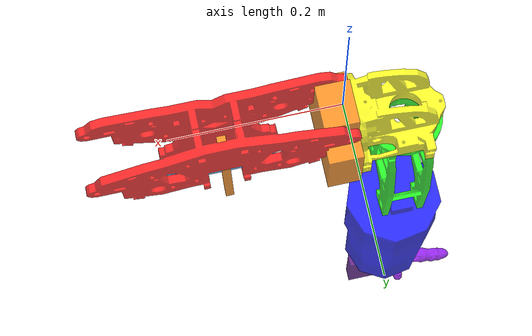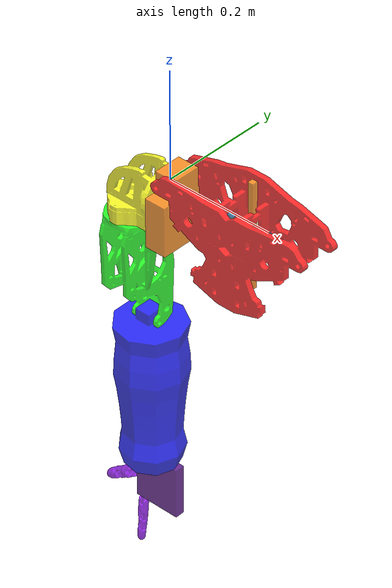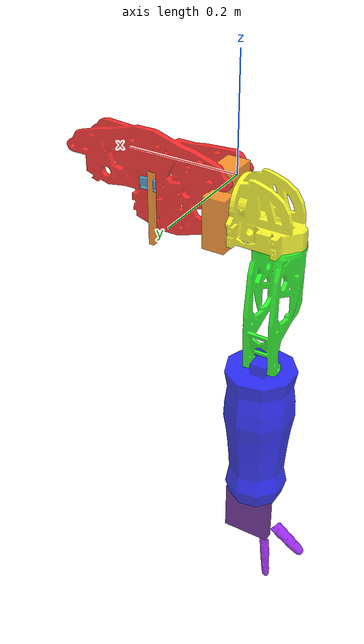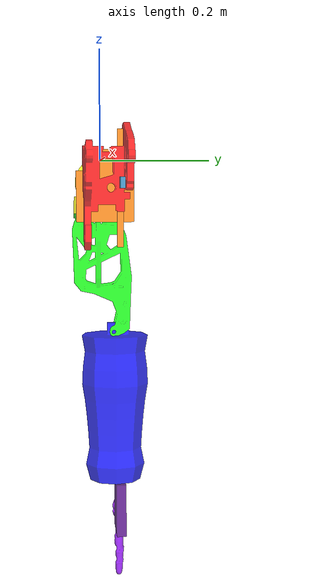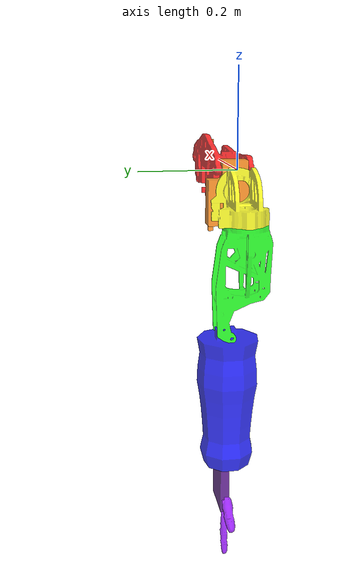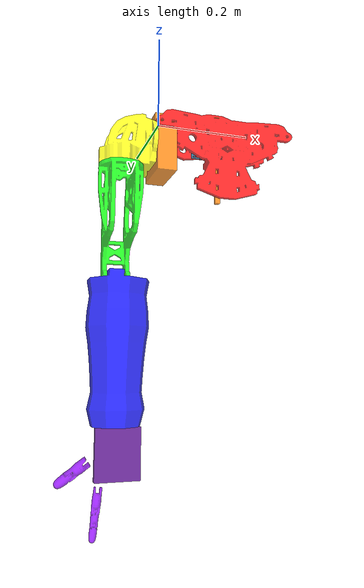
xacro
<?xml version="1.0"?>
<robot name="inmoov_v1" xmlns:xacro="http://ros.org/wiki/xacro">

  <!-- Materials -->
  <material name="red">
    <color rgba="1.0 0.0 0.0 0.8"/>
  </material>
  <material name="orange">
    <color rgba="1.0 0.5 0.0 0.8"/>
  </material>
  <material name="yellow">
    <color rgba="1.0 1.0 0.0 0.8"/>
  </material>
  <material name="green">
    <color rgba="0.0 1.0 0.0 0.8"/>
  </material>
  <material name="blue">
    <color rgba="0.0 0.0 1.0 0.8"/>
  </material>
  <material name="indigo">
    <color rgba="0.294 0.0 0.510 0.8"/>
  </material>
  <material name="violet">
    <color rgba="0.561 0.0 1.0 0.8"/>
  </material>
  <material name="realsensecolor">
    <color rgba="0.141 0.529 0.757 0.8"/>
  </material>
  <!-- Variables  -->
  <property name="pi" value="3.1415926"/>
  <property name="mesh_scale" value="0.001" />

  <property name="pole_size_x" value="0.01" />
  <property name="pole_size_y" value="0.01" />
  <property name="pole_size_z" value="0.20" />
  <property name="pole_offset_x" value="0.142" />
  <property name="pole_offset_y" value="0.0286" />
  <property name="pole_offset_z" value="-0.05" />

  <property name="camera_size_x" value="0.05" />
  <property name="camera_size_y" value="0.01" />
  <property name="camera_size_z" value="0.01" />
  <property name="camera_offset_x" value="0.142" />
  <property name="camera_offset_y" value="0.0286" />
  <property name="camera_offset_z" value="0.020" />

<!-- Body Parts -->
  <!-- Base -->
  <link name="base_link">
    <visual>
      <origin rpy="0 0 0" xyz="0 0 0"/>
      <geometry>
        <mesh filename="package://robo_description/meshes/torso/visual/Inmoov_Baselink_02.STL" scale="${mesh_scale} ${mesh_scale} ${mesh_scale}"/>
      </geometry>
      <material name="red"/>
    </visual>
    <collision>
      <origin rpy="0 0 0" xyz="0 0 0"/>
      <geometry>
        <mesh filename="package://robo_description/meshes/torso/collision/Collision_Base.STL" scale="${mesh_scale} ${mesh_scale} ${mesh_scale}"/>
      </geometry>
    </collision>
  </link>
  <!-- Shoulder_A -->
  <link name="shoulder_a_link">
    <visual>
      <origin rpy="0 0 0" xyz="0 0 0"/>
      <geometry>
        <mesh filename="package://robo_description/meshes/arm/visual/Inmoov_ShoulderA_02.STL" scale="${mesh_scale} ${mesh_scale} ${mesh_scale}"/>
      </geometry>
      <material name="orange"/>
    </visual>
    <collision>
      <origin rpy="0 0 0" xyz="0 0 0"/>
      <geometry>
        <mesh filename="package://robo_description/meshes/arm/collision/Collision_ShoulderA.STL" scale="${mesh_scale} ${mesh_scale} ${mesh_scale}"/>
      </geometry>
    </collision>
  </link>
  <joint name="arm_out_joint" type="revolute">
    <axis xyz="0 1 0"/>
    <origin rpy="0 0 0" xyz="0 0 0"/>
    <limit effort="1000.0" lower="0.0" upper="1.5707963" velocity="0.5"/>
    <parent link="base_link"/>
    <child link="shoulder_a_link"/>
  </joint>
  <!-- Shoulder_B -->
  <link name="shoulder_b_link">
    <visual>
      <origin rpy="0 0 0" xyz="0 0 0"/>
      <geometry>
        <mesh filename="package://robo_description/meshes/arm/visual/Inmoov_ShoulderB_02.STL" scale="${mesh_scale} ${mesh_scale} ${mesh_scale}"/>
      </geometry>
      <material name="yellow"/>
    </visual>
    <collision>
      <origin rpy="0 0 0" xyz="0 0 0"/>
      <geometry>
        <mesh filename="package://robo_description/meshes/arm/collision/Collision_ShoulderB.STL" scale="${mesh_scale} ${mesh_scale} ${mesh_scale}"/>
      </geometry>
    </collision>
  </link>
  <joint name="arm_fwd_joint" type="revolute">
    <axis xyz="-1 0 0"/>
    <origin rpy="0 0 0" xyz="0 0 0"/>
    <limit effort="1000.0" lower="0.0" upper="1.5707963" velocity="0.5"/>
    <parent link="shoulder_a_link"/>
    <child link="shoulder_b_link"/>
  </joint>
  <!-- Biceps -->
  <link name="biceps_link">
    <visual>
      <origin rpy="0 0 0" xyz=".0775382 .00106347 .0976646"/>
      <geometry>
        <mesh filename="package://robo_description/meshes/arm/visual/Inmoov_Biceps_02.STL" scale="${mesh_scale} ${mesh_scale} ${mesh_scale}"/>
      </geometry>
      <material name="green"/>
    </visual>
    <collision>
      <origin rpy="0 0 0" xyz=".0775382 .00106347 .0976646"/>
      <geometry>
        <mesh filename="package://robo_description/meshes/arm/collision/Collision_Biceps.STL" scale="${mesh_scale} ${mesh_scale} ${mesh_scale}"/>
      </geometry>
    </collision>
  </link>
  <joint name="arm_rotate_joint" type="revolute">
    <axis xyz="0 0 1"/>
    <origin rpy="0 0 0" xyz="-.0775382 -.00106347 -.0976646"/>
    <limit effort="1000.0" lower="-1.5707963" upper="1.5707963" velocity="0.5"/>
    <parent link="shoulder_b_link"/>
    <child link="biceps_link"/>
  </joint>
  <!-- Forearm -->
  <link name="forearm_link">
    <visual>
      <origin rpy="0 0 0" xyz=".078261 -.027094 .322299"/>
      <geometry>
        <mesh filename="package://robo_description/meshes/arm/visual/Inmoov_Forearm_02.STL" scale="${mesh_scale} ${mesh_scale} ${mesh_scale}"/>
      </geometry>
      <material name="blue"/>
    </visual>
    <collision>
      <origin rpy="0 0 0" xyz=".078261 -.027094 .322299"/>
      <geometry>
        <mesh filename="package://robo_description/meshes/arm/collision/Collision_Forearm.STL" scale="${mesh_scale} ${mesh_scale} ${mesh_scale}"/>
      </geometry>
    </collision>
  </link>
  <joint name="elbow_joint" type="revolute">
    <axis xyz="-1 0 0"/>
    <origin rpy="0 0 0" xyz="-.0007228 .02815747 -.2246344"/>
    <limit effort="1000.0" lower="0.0" upper="1.5707963" velocity="0.5"/>
    <parent link="biceps_link"/>
    <child link="forearm_link"/>
  </joint>
  <!-- Wrist/Hand -->
  <link name="wrist_link">
    <visual>
      <origin rpy="0 0 0" xyz=".068289 -.03942 .611017"/>
      <geometry>
        <mesh filename="package://robo_description/meshes/arm/visual/Inmoov_Hand_02.STL" scale="${mesh_scale} ${mesh_scale} ${mesh_scale}"/>
      </geometry>
      <material name="indigo"/>
    </visual>
    <collision>
      <origin rpy="0 0 0" xyz=".068289 -.03942 .611017"/>
      <geometry>
        <mesh filename="package://robo_description/meshes/arm/collision/Collision_Hand_02.STL" scale="${mesh_scale} ${mesh_scale} ${mesh_scale}"/>
      </geometry>
    </collision>
  </link>
  <joint name="wrist_joint" type="revolute">
    <axis xyz="0 0 1"/>
    <origin rpy="0 0 0" xyz=".009972 .012326 -.288718"/>
    <limit effort="1000.0" lower="0.0" upper="3.1415926" velocity="0.5"/>
    <parent link="forearm_link"/>
    <child link="wrist_link"/>
  </joint>
<!-- Index Finger -->
  <link name="index_link">
    <visual>
      <origin rpy="0 0 0" xyz=".102137 -.037759 .730393"/>
      <geometry>
        <mesh filename="package://robo_description/meshes/arm/visual/Inmoov_Index.STL" scale="${mesh_scale} ${mesh_scale} ${mesh_scale}"/>
      </geometry>
      <material name="violet"/>
    </visual>
    <collision>
      <origin rpy="0 0 0" xyz=".102137 -.037759 .730393"/>
      <geometry>
        <mesh filename="package://robo_description/meshes/arm/collision/Collision_Index.STL" scale="${mesh_scale} ${mesh_scale} ${mesh_scale}"/>
      </geometry>
    </collision>
  </link>
  <joint name="index_joint" type="revolute">
    <axis xyz="-1 0 0"/>
    <origin rpy="0 0 0" xyz="-.033848 -.001661 -.119376"/>
    <limit effort="1000.0" lower="0.0" upper="${pi/2}" velocity="0.5"/>
    <parent link="wrist_link"/>
    <child link="index_link"/>
  </joint>
<!-- Thumb Finger -->
  <link name="thumb_link">
    <visual>
      <origin rpy="0 0 0" xyz=".126567 -.038285 .679538"/>
      <geometry>
        <mesh filename="package://robo_description/meshes/arm/visual/Inmoov_Thumb.STL" scale="${mesh_scale} ${mesh_scale} ${mesh_scale}"/>
      </geometry>
      <material name="violet"/>
    </visual>
    <collision>
      <origin rpy="0 0 0" xyz=".126567 -.038285 .679538"/>
      <geometry>
        <mesh filename="package://robo_description/meshes/arm/collision/Collision_Thumb.STL" scale="${mesh_scale} ${mesh_scale} ${mesh_scale}"/>
      </geometry>
    </collision>
  </link>
  <joint name="thumb_joint" type="revolute">
    <axis xyz="0 0 1"/>
    <origin rpy="0 0 0" xyz="-.058278 -.001135 -.068521"/>
    <limit effort="1000.0" lower="0.0" upper="${pi/2}" velocity="0.5"/>
    <parent link="wrist_link"/>
    <child link="thumb_link"/>
  </joint>
<!-- Realsense sensor -->
  <!-- Pole -->
  <link name="pole_link">
    <visual>
      <origin rpy="0 0 0" xyz="${pole_offset_x} ${pole_offset_y} ${pole_offset_z}"/>
      <geometry>
        <box size="${pole_size_x} ${pole_size_y} ${pole_size_z}" />
      </geometry>
      <material name="orange"/>
    </visual>
    <collision>
      <origin rpy="0 0 0" xyz="0 0 0"/>
      <geometry>
        <box size="${pole_size_x} ${pole_size_y} ${pole_size_z}" />
      </geometry>
    </collision>
  </link>
  <joint name="pole_base_joint" type="prismatic">
    <axis xyz="0 0 1"/>
    <origin rpy="0 0 0" xyz="0 0 0"/>
    <limit effort="1000.0" lower="0.0" upper="${pole_size_z}" velocity="0.5"/>
    <parent link="base_link"/>
    <child link="pole_link"/>
  </joint>
  <!-- Camera -->
  <link name="camera_link">
    <visual>
      <origin rpy="0 0 0" xyz="${camera_offset_x} ${camera_offset_y} ${camera_offset_z}"/>
      <geometry>
        <mesh filename="package://robo_description/meshes/camera/visual/RealSense.STL" scale="${mesh_scale} ${mesh_scale} ${mesh_scale}"/>
      </geometry>
      <material name="realsensecolor"/>
    </visual>
    <collision>
      <origin rpy="0 0 0" xyz="0 0 0"/>
      <geometry>
        <box size="${camera_offset_x} ${camera_offset_y} ${camera_offset_z}" />
      </geometry>
    </collision>
  </link>
  <joint name="camera_pole_joint" type="revolute">
    <axis xyz="1 0 0"/>
    <origin rpy="0 0 0" xyz="${pole_offset_x-camera_offset_x} ${pole_offset_y-camera_offset_y} ${pole_offset_z-camera_offset_z}"/>
    <limit effort="1000.0" lower="${0}" upper="${pi/4}" velocity="0.5"/>
    <parent link="pole_link"/>
    <child link="camera_link"/>
  </joint>
</robot>
